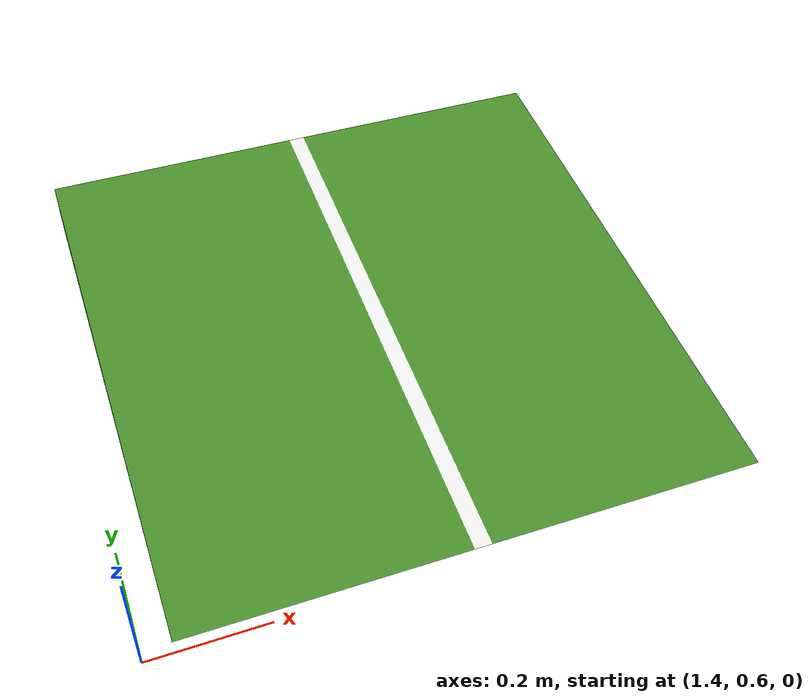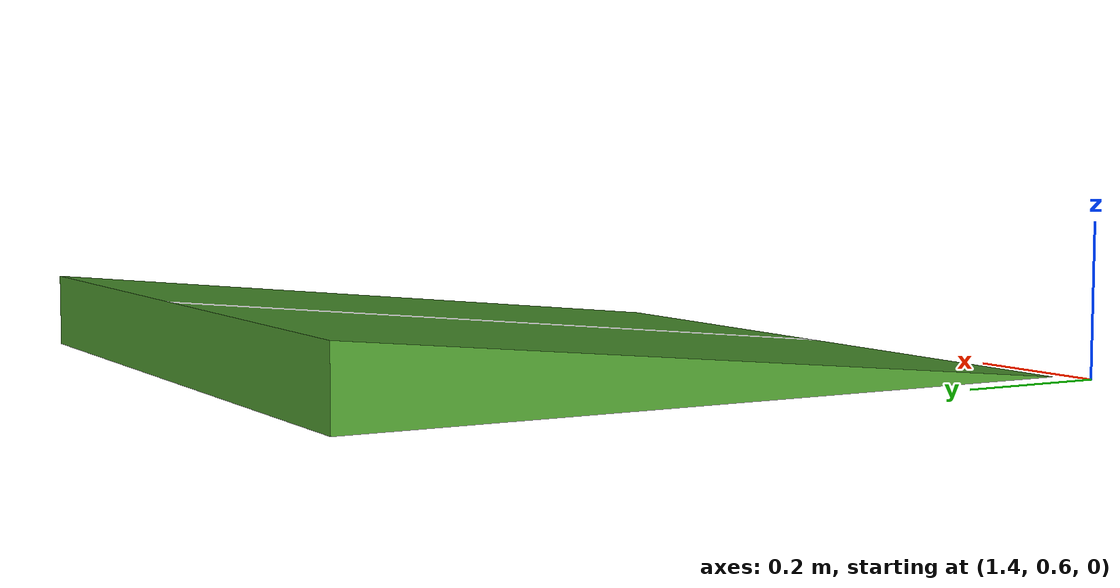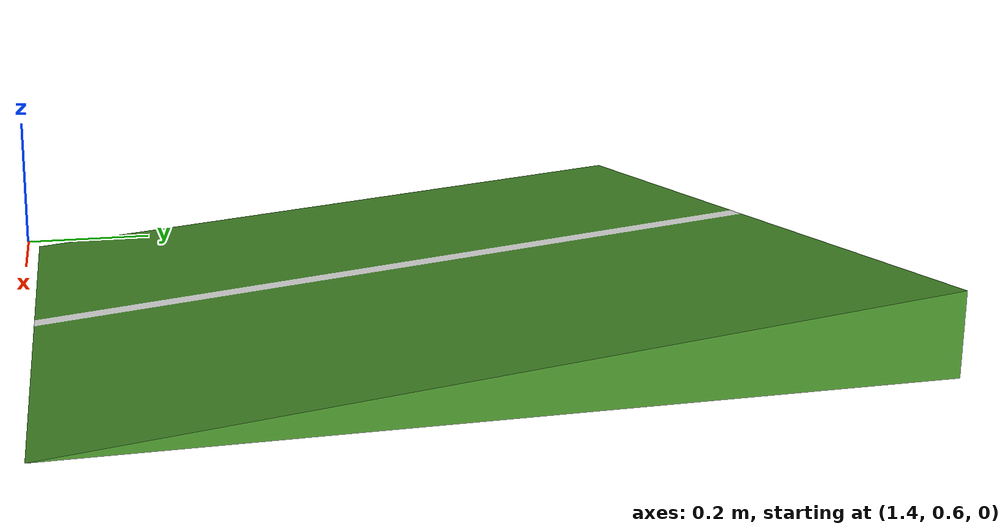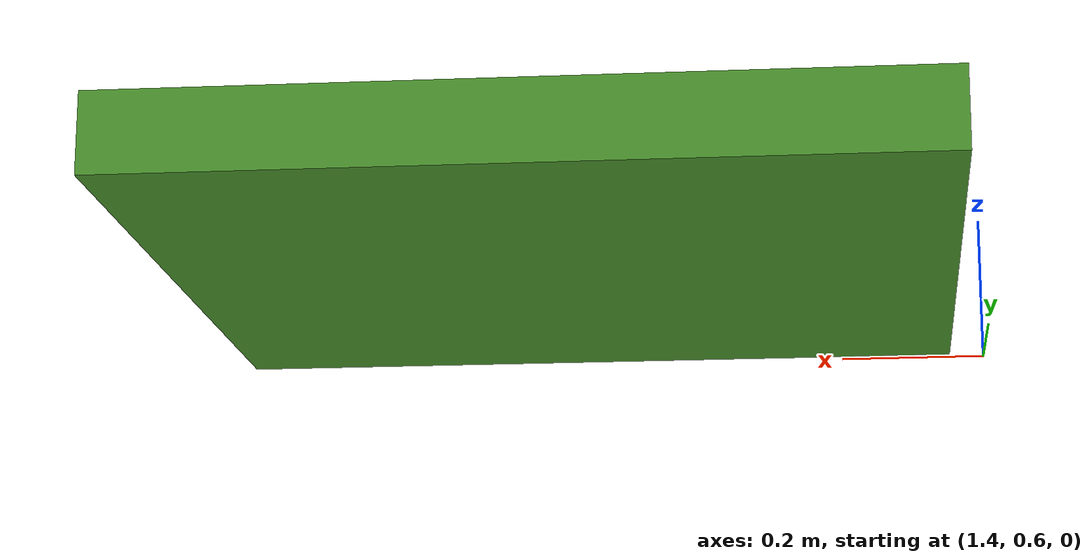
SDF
<?xml version="1.0"?>
<sdf version="1.6">
  <model name="abu2024_slope2">
      <pose>0 0 0  0 0 0</pose>
      <static>true</static>
      <link name="body">
        <visual name="visual">
          <geometry>
            <mesh><uri>model://abu2024_slope2/meshes/slope2.dae</uri></mesh>
          </geometry>
        </visual>
        <collision name="collision">
          <geometry>
            <mesh><uri>model://abu2024_slope2/meshes/slope2.dae</uri></mesh>
          </geometry>
        </collision>
      </link>
 </model>
</sdf>
